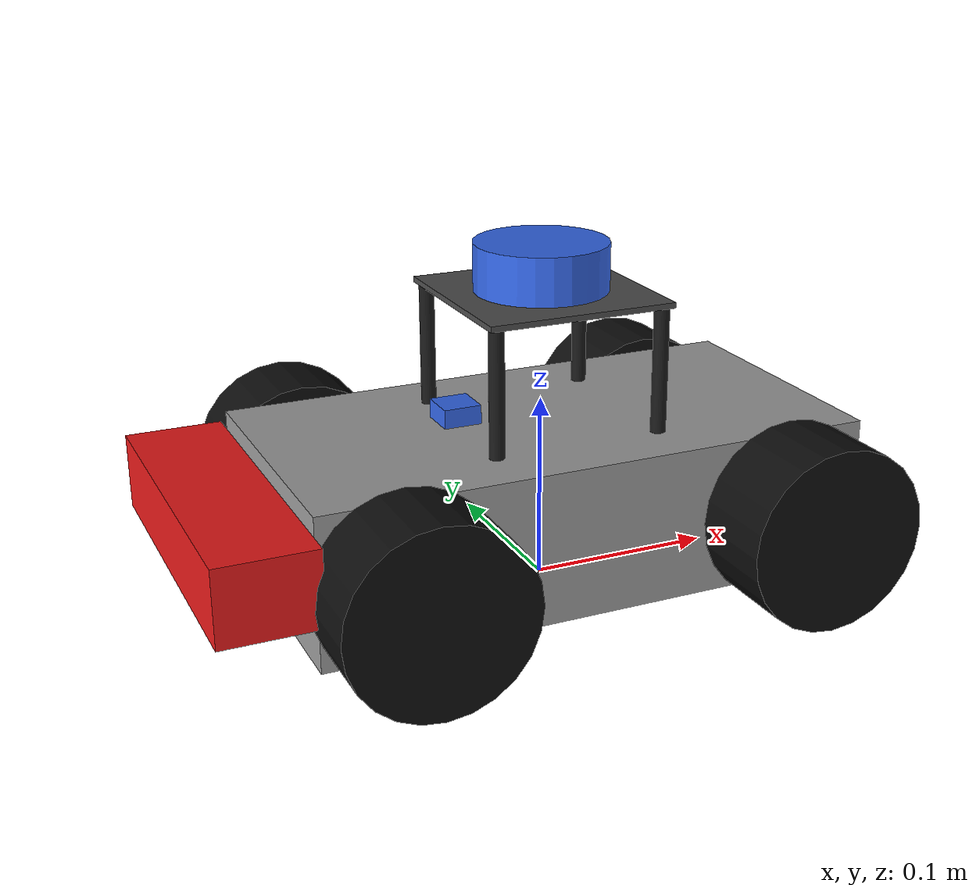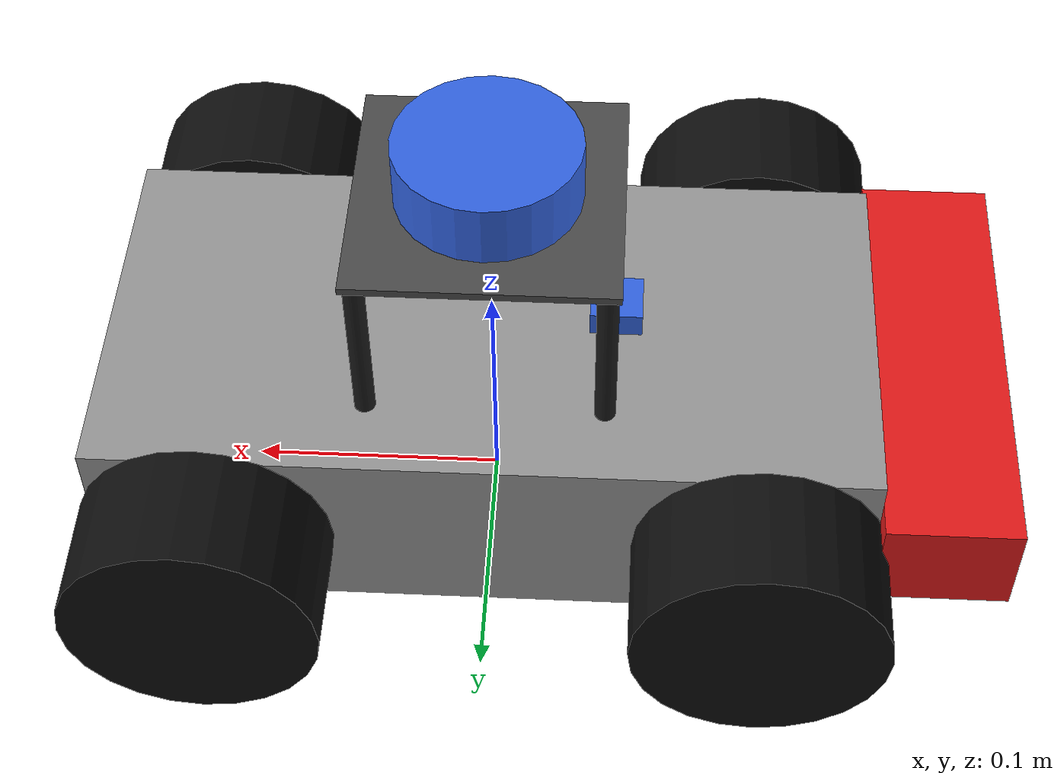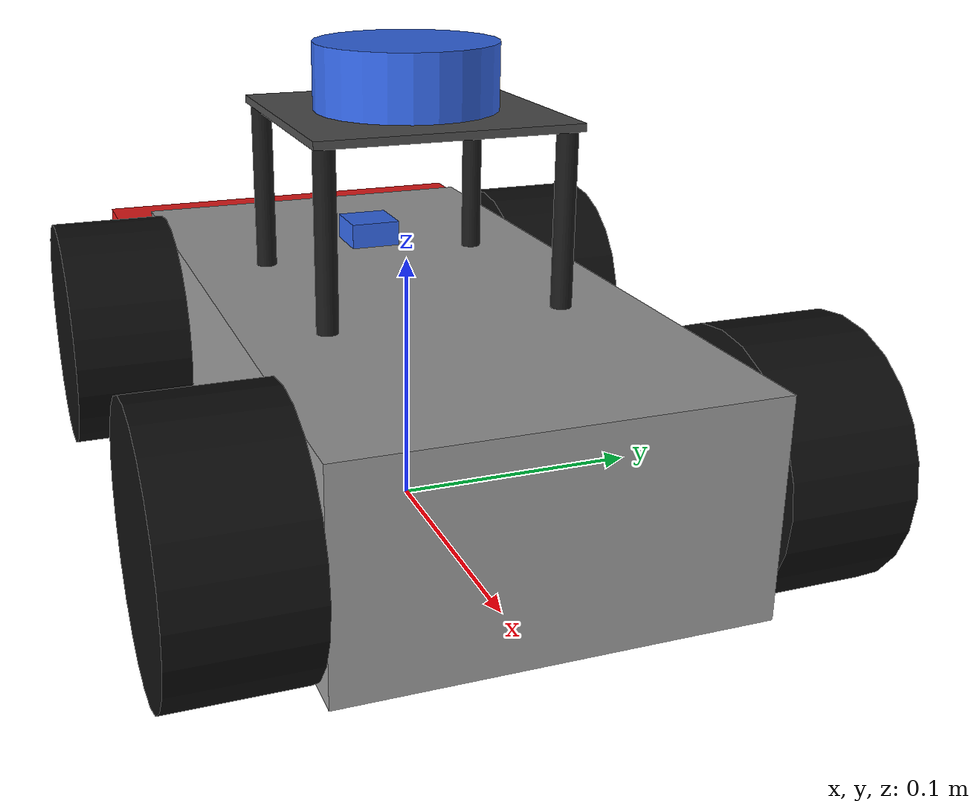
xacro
<?xml version="1.0"?>
<robot xmlns:xacro="http://www.ros.org/wiki/xacro" name="paesano">

  <!-- Simulation flavor: true = Gazebo Sim (Ignition), false = Gazebo Classic -->
  <xacro:arg name="use_gz" default="true"/>

  <!-- Main robot macro so other files (e.g., .urdf wrapper) can include/instantiate -->
  <xacro:macro name="paesano" params="">

    <!-- Parameters -->
    <xacro:include filename="$(find paesano_description)/urdf/paesano-params.xacro" />

    <!-- Base link with simple box visual and collision -->
    <link name="base_link">
      <inertial>
        <origin xyz="0 0 0.05" rpy="0 0 0"/>
        <mass value="2.0"/>
        <inertia ixx="0.011483" ixy="0.0" ixz="0.0" iyy="0.021483" iyz="0.0" izz="0.030833"/>
      </inertial>
      <visual>
        <origin xyz="0 0 0.05" rpy="0 0 0"/>
        <geometry>
          <box size="${robot_length} ${robot_width} ${robot_height}"/>
        </geometry>
        <material name="gray">
          <color rgba="0.6 0.6 0.6 1.0"/>
        </material>
      </visual>
      <collision>
        <origin xyz="0 0 0.05" rpy="0 0 0"/>
        <geometry>
          <box size="${robot_length} ${robot_width} ${robot_height}"/>
        </geometry>
      </collision>
    </link>

    <!-- Battery Pack -->
    <link name="battery_link">
      <inertial>
        <origin xyz="0 0 0.06" rpy="0 0 0"/>
        <mass value="0.5"/>
        <inertia ixx="0.000417" ixy="0.0" ixz="0.0" iyy="0.000417" iyz="0.0" izz="0.000278"/>
      </inertial>
      <visual>
        <origin xyz="0 0 0.06" rpy="0 0 0"/>
        <geometry>
          <box size="${battery_depth} ${battery_width} 0.04"/>
        </geometry>
        <material name="red">
          <color rgba="0.9 0.1 0.1 1.0"/>
        </material>
      </visual>
      <collision>
        <origin xyz="0 0 0.06" rpy="0 0 0"/>
        <geometry>
          <box size="${battery_depth} ${battery_width} 0.04"/>
        </geometry>
      </collision>
    </link>
    <joint name="battery_mount" type="fixed">
      <parent link="base_link"/>
      <child link="battery_link"/>
      <origin xyz="-0.174 0 0" rpy="0 0 0"/>
    </joint>

    <!-- Sensors (IMU) split out for clarity -->
    <xacro:include filename="$(find paesano_description)/urdf/paesano-sensors.xacro" />
    <xacro:paesano_imu />

    <!-- Wheels split out for clarity -->
    <xacro:include filename="$(find paesano_description)/urdf/paesano-wheels.xacro" />
    <xacro:paesano_wheels />

    <!-- Transmissions are not needed when using kinematic base only; omit ros2_control. -->

    <!-- ros2_control removed; always use kinematic base in simulation. -->

    <xacro:if value="$(arg use_gz)">
      <gazebo>
        <!-- Always use custom kinematic base plugin in Gazebo Sim -->
        <plugin name="paesano_kinematic_base" filename="libpaesano_kinematic_base.so">
          <topic>/cmd_vel</topic>
          <max_linear>1.5</max_linear>
          <max_angular>3.0</max_angular>
          <publish_rate>50.0</publish_rate>

          <publish_odom>false</publish_odom>
          <odom_topic>/odom</odom_topic>
          <odom_frame>odom</odom_frame>
          <base_frame>base_link</base_frame>

          <pose_cov_diag>0.0001 0.0001 1000000 1000000 1000000 0.001</pose_cov_diag>
          <twist_cov_diag>0.001 0.001 1000000 1000000 1000000 0.01</twist_cov_diag>

          <publish_encoders>true</publish_encoders>
          <ticks_topic>/wheel_encoders</ticks_topic>
          <joint_state_topic>/encoder_joint_states</joint_state_topic>

          <ticks_per_rev>2882</ticks_per_rev>
          <wheel_radius>${wheel_radius}</wheel_radius>

          <!-- IMPORTANT: These now match your IRL tuned values -->
          <base_length>${base_length}</base_length>
          <base_width>${base_width}</base_width>

          <front_left_joint>front_left_wheel_joint</front_left_joint>
          <front_right_joint>front_right_wheel_joint</front_right_joint>
          <back_left_joint>back_left_wheel_joint</back_left_joint>
          <back_right_joint>back_right_wheel_joint</back_right_joint>
        </plugin>

      </gazebo>
    </xacro:if>

  </xacro:macro>

  <!-- Instantiate macro by default so this file remains directly usable with xacro -->
  <xacro:paesano />

</robot>

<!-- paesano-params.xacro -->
<robot xmlns:xacro="http://www.ros.org/wiki/xacro">

  <!-- Geometry and model parameters for Paesano -->
  <!-- Visual/body dimensions -->
  <xacro:property name="robot_length" value="0.297"/>
  <xacro:property name="robot_width"  value="0.152"/>
  <xacro:property name="robot_height" value="0.08"/>

  <!-- Wheel geometry -->
  <xacro:property name="wheel_radius" value="0.0485"/>
  <xacro:property name="wheel_thickness" value="0.048"/>

  <!-- Real-life wheel-center geometry (controls kinematics) -->
  <xacro:property name="base_length" value="0.21"/>
  <xacro:property name="base_width"  value="0.200"/>

  <!-- Convenience: half distances -->
  <xacro:property name="wheel_x" value="${base_length/2.0}"/>
  <xacro:property name="wheel_y" value="${base_width/2.0}"/>

  <!-- Battery pack -->
  <xacro:property name="battery_depth" value="0.051"/>
  <xacro:property name="battery_width" value="0.177"/>

</robot>

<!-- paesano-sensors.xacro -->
<robot xmlns:xacro="http://www.ros.org/wiki/xacro">

  <!-- IMU sensor separated into its own xacro for clarity -->
  <xacro:macro name="paesano_imu" params="">

    <!-- IMU link -->
    <link name="imu_link">
      <inertial>
        <origin xyz="0 0 0.1" rpy="0 0 0"/>
        <mass value="0.02"/>
        <inertia ixx="3.333e-06" ixy="0.0" ixz="0.0" iyy="3.333e-06" iyz="0.0" izz="5.333e-06"/>
      </inertial>

      <visual>
        <origin xyz="0 0 0.1" rpy="0 0 0"/>
        <geometry>
          <box size="0.02 0.02 0.01"/>
        </geometry>
        <material name="blue">
          <color rgba="0.2 0.4 0.9 1.0"/>
        </material>
      </visual>

      <collision>
        <origin xyz="0 0 0.1" rpy="0 0 0"/>
        <geometry>
          <box size="0.02 0.02 0.01"/>
        </geometry>
      </collision>
    </link>

    <joint name="imu_joint" type="fixed">
      <parent link="base_link"/>
      <child link="imu_link"/>
      <origin xyz="-0.048 0 0" rpy="0 0 3.1415926535"/>
    </joint>

    <!-- Gazebo Classic IMU sensor (only when NOT using Gazebo Sim) -->
    <xacro:unless value="$(arg use_gz)">
      <gazebo reference="imu_link">
        <sensor name="imu_sensor" type="imu">
          <always_on>1</always_on>
          <update_rate>100</update_rate>
          <visualize>true</visualize>
          <topic>/imu/data_raw</topic>

          <imu>
            <angular_velocity>
              <noise>
                <type>gaussian</type>
                <mean>0.0</mean>
                <stddev>0.0005</stddev>
              </noise>
            </angular_velocity>

            <orientation>
              <noise>
                <type>gaussian</type>
                <mean>0.0</mean>
                <stddev>0.001</stddev>
              </noise>
            </orientation>

            <linear_acceleration>
              <noise>
                <type>gaussian</type>
                <mean>0.0</mean>
                <stddev>0.01</stddev>
              </noise>
            </linear_acceleration>
          </imu>
        </sensor>
      </gazebo>
    </xacro:unless>

    <!-- Gazebo Sim IMU sensor (only when using Gazebo Sim) -->
    <xacro:if value="$(arg use_gz)">
      <gazebo reference="imu_link">
        <sensor name="imu_sensor" type="imu">
          <always_on>true</always_on>
          <update_rate>100</update_rate>
          <visualize>true</visualize>
          <topic>/imu</topic>
        </sensor>
      </gazebo>
    </xacro:if>

    <!-- Lidar mounting plate, positioned above the IMU -->
    <link name="lidar_plate_link">
      <inertial>
        <origin xyz="0 0 0" rpy="0 0 0"/>
        <mass value="0.05"/>
        <inertia ixx="1e-4" ixy="0" ixz="0" iyy="1e-4" iyz="0" izz="1e-4"/>
      </inertial>

      <!-- Thin plate -->
      <visual>
        <origin xyz="0 0 0" rpy="0 0 0"/>
        <geometry>
          <box size="0.10 0.10 0.003"/>
        </geometry>
        <material name="dark_gray">
          <color rgba="0.3 0.3 0.3 1.0"/>
        </material>
      </visual>

      <collision>
        <origin xyz="0 0 0" rpy="0 0 0"/>
        <geometry>
          <box size="0.10 0.10 0.003"/>
        </geometry>
      </collision>

      <!-- Four standoffs/pegs (visual only) placed at the corners, extending down to chassis top -->
      <visual>
        <!-- L = 0.0658, origin.z = -0.0344 so top meets plate underside, bottom meets chassis top -->
        <origin xyz=" 0.045  0.045 -0.0344" rpy="0 0 0"/>
        <geometry>
          <cylinder radius="0.004" length="0.0658"/>
        </geometry>
        <material name="black">
          <color rgba="0.1 0.1 0.1 1.0"/>
        </material>
      </visual>
      <visual>
        <origin xyz=" 0.045 -0.045 -0.0344" rpy="0 0 0"/>
        <geometry>
          <cylinder radius="0.004" length="0.0658"/>
        </geometry>
        <material name="black"/>
      </visual>
      <visual>
        <origin xyz="-0.045  0.045 -0.0344" rpy="0 0 0"/>
        <geometry>
          <cylinder radius="0.004" length="0.0658"/>
        </geometry>
        <material name="black"/>
      </visual>
      <visual>
        <origin xyz="-0.045 -0.045 -0.0344" rpy="0 0 0"/>
        <geometry>
          <cylinder radius="0.004" length="0.0658"/>
        </geometry>
        <material name="black"/>
      </visual>
    </link>

    <joint name="lidar_plate_joint" type="fixed">
      <parent link="base_link"/>
      <!-- Place plate ~2 in above IMU top; pegs rest on chassis top.
           base top z=0.09, imu top z≈0.105 → plate underside ≈ 0.105+0.0508=0.1558
           plate center = underside + 0.0015 = 0.1573 -->
      <child link="lidar_plate_link"/>
      <origin xyz="0 0 0.1573" rpy="0 0 0"/>
    </joint>

    <!-- Lidar body/link mounted on top of the plate -->
    <link name="base_laser">
      <inertial>
        <origin xyz="0 0 0" rpy="0 0 0"/>
        <mass value="0.15"/>
        <inertia ixx="2e-4" ixy="0" ixz="0" iyy="2e-4" iyz="0" izz="2e-4"/>
      </inertial>
      <visual>
        <!-- Small puck-style lidar -->
        <origin xyz="0 0 0" rpy="0 0 0"/>
        <geometry>
          <cylinder radius="0.035" length="0.025"/>
        </geometry>
        <material name="blue">
          <color rgba="0.2 0.4 0.9 1.0"/>
        </material>
      </visual>
      <collision>
        <origin xyz="0 0 0" rpy="0 0 0"/>
        <geometry>
          <cylinder radius="0.035" length="0.025"/>
        </geometry>
      </collision>
    </link>

    <joint name="base_laser_mount" type="fixed">
      <parent link="lidar_plate_link"/>
      <child link="base_laser"/>
      <!-- Sit the lidar on plate top: z = plate half-thickness + lidar half-length = 0.0015 + 0.0125
           Rotate 90 degrees clockwise about +Z (yaw = -pi/2) so sensor arrow points right -->
      <origin xyz="0 0 0.014" rpy="0 0 -1.57079632679"/>
    </joint>

    <!-- Gazebo Classic GPU lidar (only when NOT using Gazebo Sim) -->
    <xacro:unless value="$(arg use_gz)">
      <gazebo reference="base_laser">
        <sensor name="gpu_lidar" type="gpu_ray">
          <always_on>1</always_on>
          <update_rate>20</update_rate>
          <visualize>true</visualize>
          <ray>
            <scan>
              <horizontal>
                <samples>720</samples>
                <resolution>1</resolution>
                <min_angle>-3.14159</min_angle>
                <max_angle>3.14159</max_angle>
              </horizontal>
              <vertical>
                <samples>1</samples>
                <resolution>1</resolution>
                <min_angle>0.0</min_angle>
                <max_angle>0.0</max_angle>
              </vertical>
            </scan>
            <range>
              <min>0.12</min>
              <max>12.0</max>
              <resolution>0.01</resolution>
            </range>
          </ray>

          <plugin name="gazebo_ros_gpu_laser" filename="libgazebo_ros_gpu_laser.so">
            <topicName>/scan</topicName>
            <frameName>base_laser</frameName>
          </plugin>
        </sensor>
      </gazebo>
    </xacro:unless>

    <!-- Gazebo Sim GPU lidar (only when using Gazebo Sim) -->
    <xacro:if value="$(arg use_gz)">
      <gazebo reference="base_laser">
        <sensor name="gpu_lidar" type="gpu_lidar">
          <always_on>true</always_on>
          <update_rate>20</update_rate>
          <visualize>true</visualize>
          <topic>/scan</topic>

          <lidar>
            <scan>
              <horizontal>
                <samples>720</samples>
                <resolution>1</resolution>
                <min_angle>-3.14159</min_angle>
                <max_angle>3.14159</max_angle>
              </horizontal>
              <vertical>
                <samples>1</samples>
                <resolution>1</resolution>
                <min_angle>0.0</min_angle>
                <max_angle>0.0</max_angle>
              </vertical>
            </scan>
            <range>
              <min>0.12</min>
              <max>12.0</max>
              <resolution>0.01</resolution>
            </range>
          </lidar>

          <!-- Explicit clip distances for GPU-based sensor rendering -->
          <camera>
            <clip>
              <near>0.01</near>
              <far>100.0</far>
            </clip>
          </camera>
        </sensor>
      </gazebo>
    </xacro:if>

  </xacro:macro>

</robot>

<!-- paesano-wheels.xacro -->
<robot xmlns:xacro="http://www.ros.org/wiki/xacro">

  <!-- Macro for a single wheel link + joint -->
  <xacro:macro name="paesano_wheel" params="wheel_name joint_name origin_x origin_y origin_z fdir1">
    <link name="${wheel_name}">
      <inertial>
        <origin xyz="0 0 0" rpy="1.5708 0 0"/>
        <mass value="0.2"/>
        <inertia ixx="0.0001317" ixy="0.0" ixz="0.0" iyy="0.00025" iyz="0.0" izz="0.0001317"/>
      </inertial>
      <visual>
        <origin xyz="0 0 0" rpy="1.5708 0 0"/>
        <geometry>
          <cylinder radius="${wheel_radius}" length="${wheel_thickness}"/>
        </geometry>
        <material name="wheel_black">
          <color rgba="0.05 0.05 0.05 1.0"/>
        </material>
      </visual>
      <collision>
        <origin xyz="0 0 0" rpy="1.5708 0 0"/>
        <geometry>
          <cylinder radius="${wheel_radius}" length="${wheel_thickness}"/>
        </geometry>
      </collision>
    </link>

    <joint name="${joint_name}" type="continuous">
      <parent link="base_link"/>
      <child link="${wheel_name}"/>
      <origin xyz="${origin_x} ${origin_y} ${origin_z}" rpy="0 0 0"/>
      <axis xyz="0 1 0"/>
    </joint>

    <!-- Approximate mecanum behavior via anisotropic friction (Gazebo Classic ODE only) -->
    <xacro:unless value="$(arg use_gz)">
      <gazebo reference="${wheel_name}">
        <mu1>1.0</mu1>
        <mu2>0.05</mu2>
        <fdir1>${fdir1}</fdir1>
      </gazebo>
    </xacro:unless>
  </xacro:macro>

  <!-- Macro to instantiate all 4 wheels -->
  <xacro:macro name="paesano_wheels" params="">
    <xacro:paesano_wheel wheel_name="front_left_wheel"  joint_name="front_left_wheel_joint"  origin_x="${wheel_x}"  origin_y="${wheel_y}"  origin_z="${wheel_radius}" fdir1="1 1 0"/>
    <xacro:paesano_wheel wheel_name="front_right_wheel" joint_name="front_right_wheel_joint" origin_x="${wheel_x}"  origin_y="${-wheel_y}" origin_z="${wheel_radius}" fdir1="1 -1 0"/>
    <xacro:paesano_wheel wheel_name="back_left_wheel"   joint_name="back_left_wheel_joint"   origin_x="${-wheel_x}" origin_y="${wheel_y}"  origin_z="${wheel_radius}" fdir1="-1 -1 0"/>
    <xacro:paesano_wheel wheel_name="back_right_wheel"  joint_name="back_right_wheel_joint"  origin_x="${-wheel_x}" origin_y="${-wheel_y}" origin_z="${wheel_radius}" fdir1="-1 1 0"/>
  </xacro:macro>

</robot>
